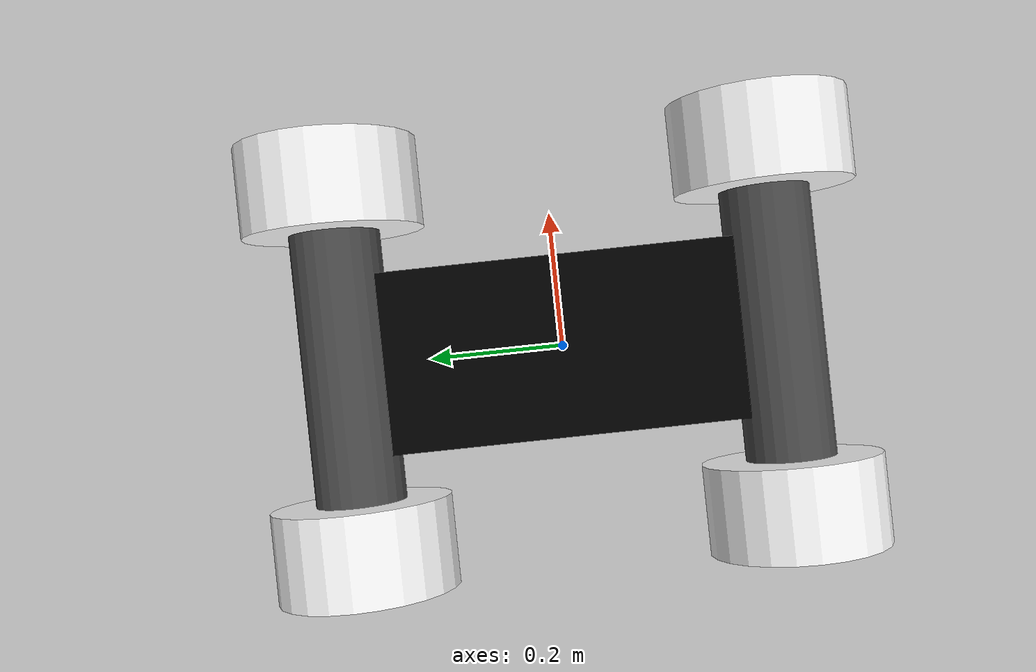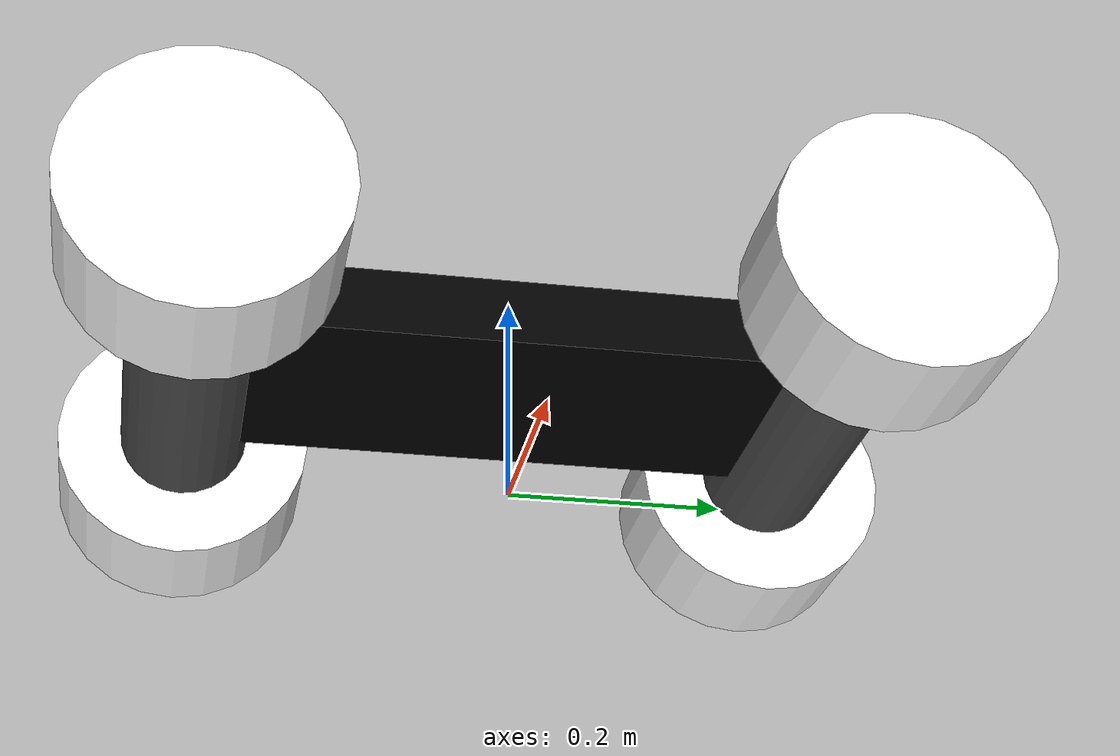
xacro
<?xml version="1.0"?>
<robot name="car_model" xmlns:xacro="http://www.ros.org/wiki/xacro">

        <material name="black">
                <color rgba="0 0 0 1"/>
        </material>
        <material name="blue">
                <color rgba="0 0 0.8 1"/>
        </material>
        <material name="white">
                <color rgba="1 1 1 1"/>
        </material>
        <material name="gray">
                <color rgba="0.3 0.3 0.3 1"/>
        </material>

        <xacro:property name="wheelradius" value="0.125" />
        <xacro:property name="baselength" value="0.5" />
        <xacro:property name="baseheight" value="${wheelradius}" />
        <xacro:property name="axlelength" value="0.4" />

        <xacro:macro name="default_inertial" params="mass">
          <inertial>
            <mass value="${mass}" />
            <inertia ixx="1.0" ixy="0.0" ixz="0.0" iyy="1.0" iyz="0.0" izz="1.0" />
          </inertial>
        </xacro:macro>

        <xacro:macro name="global_joint" params="child">
                <joint name="world_joint_to_${child}" type="fixed">
                        <parent link="base_link" />
                        <child link="${child}" />
                </joint>
        </xacro:macro>

        <xacro:macro name="car_base">
                <link name="base_link">

                        <visual>
                                <geometry>
                                        <box size="${baselength/2} ${baselength} ${baselength/8}" />
                                </geometry>
                                <material name="black" />
                                <origin rpy="0 0 0" xyz="0 0 ${baseheight}" />
                        </visual>
                        <collision>
                                <geometry>
                                        <box size="${baselength/2} ${baselength} ${baselength/8}" />
                                        <origin rpy="0 0 0" xyz="0 0 ${baseheight}" />
                                </geometry>
                        </collision>
                        <xacro:default_inertial mass="5"/>

                </link>

        </xacro:macro>

        <xacro:macro name="car_axle" params="frontback position upper lower">
                <link name="${frontback}_axle">
                        <visual>
                                <geometry>
                                        <cylinder radius="${baselength/8}" length="${axlelength}" />
                                </geometry>
                                <material name="gray" />
                        </visual>
                        <collision>
                                <geometry>
                                        <cylinder radius="${baselength/8}" length="${axlelength}" />
                                </geometry>
                        </collision>
                        <xacro:default_inertial mass="3"/>
                </link>

                <joint name="${frontback}_axle_to_base" type="revolute">
                        <axis xyz="1 0 0" />
                        <limit lower="${lower}" upper="${upper}" effort="1000.0" velocity="1.0"/>
                        <parent link="base_link" />
                        <child link="${frontback}_axle" />
                        <origin rpy="0 -1.57 0" xyz="0 ${position * 0.3} ${baseheight}" />
                </joint>
        </xacro:macro>

        <xacro:macro name="car_front_wheel" params="leftright lr axle position upper lower">
                <link name="front_${leftright}_wheel">
                        <visual>
                                <geometry>
                                        <cylinder radius="${wheelradius}" length="${wheelradius}" />
                                </geometry>
                                <material name="white" />
                        </visual>
                        <collision>
                                <geometry>
                                        <cylinder radius="${wheelradius}" length="${wheelradius}" />
                                </geometry>
                        </collision>
                        <xacro:default_inertial mass="20"/>
                </link>

                <joint name="front_${leftright}_wheel_to_front_axle" type="revolute">
                        <axis xyz="1 0 0" />
                        <limit lower="${lower}" upper="${upper}" effort="1000.0" velocity="1.0"/>
                        <parent link="base_link" />
                        <child link="front_${leftright}_wheel" />
                        <origin rpy="0 -1.57 0" xyz="${-lr} 0.3 ${baseheight}" />
                </joint>

        </xacro:macro>

        <xacro:macro name="car_back_wheel" params="leftright axle lr upper lower">
                <link name="back_${leftright}_wheel">
                        <visual>
                                <geometry>
                                        <cylinder radius="${wheelradius}" length="${wheelradius}" />
                                </geometry>
                                <material name="white" />
                        </visual>
                        <collision>
                                <geometry>
                                        <cylinder radius="${wheelradius}" length="${wheelradius}" />
                                </geometry>
                        </collision>
                        <xacro:default_inertial mass="20"/>
                </link>

                <joint name="back_${leftright}_wheel_to_back_axle" type="revolute">
                        <axis xyz="0 0 1" />
                        <limit lower="${lower}" upper="${upper}" effort="1000.0" velocity="1.0"/>
                        <parent link="base_link" />
                        <child link="back_${leftright}_wheel" />
                        <origin rpy="0 -1.57 0" xyz="${-lr} -0.3 ${baseheight}" />
                </joint>
        </xacro:macro>

        <xacro:car_base />
        <xacro:car_axle frontback="front" position="1" upper="0.785" lower="-0.785" />
        <xacro:car_axle frontback="back" position="-1" upper="0.785" lower="-0.785" />

        <xacro:car_front_wheel leftright="left" lr="${(axlelength/2) + 0.05}" axle="1" position="1" upper="0.785" lower="-0.393" />
        <xacro:car_front_wheel leftright="right" lr="${-(axlelength/2) - 0.05}" axle="1" position="-1" upper="0.393" lower="-0.785" />
        <xacro:car_back_wheel leftright="left" lr="${(axlelength/2) + 0.05}" axle="-1"  upper="3.14" lower="3.14" />
        <xacro:car_back_wheel leftright="right" lr="${-(axlelength/2) - 0.05}" axle="-1"  upper="3.14" lower="-3.14" />

</robot>
